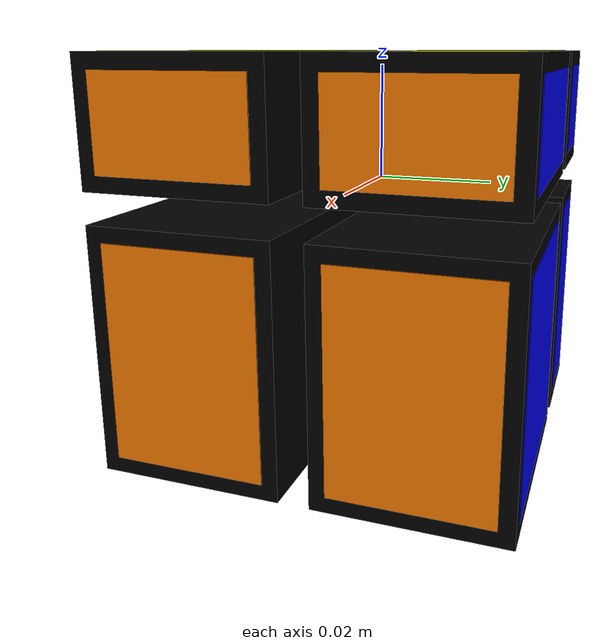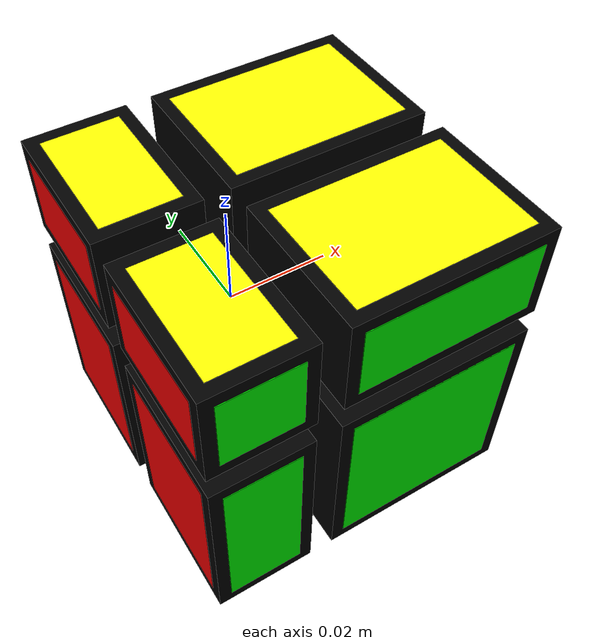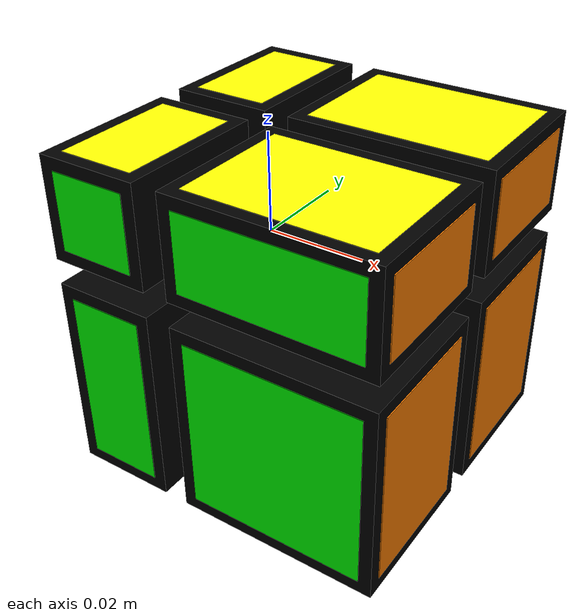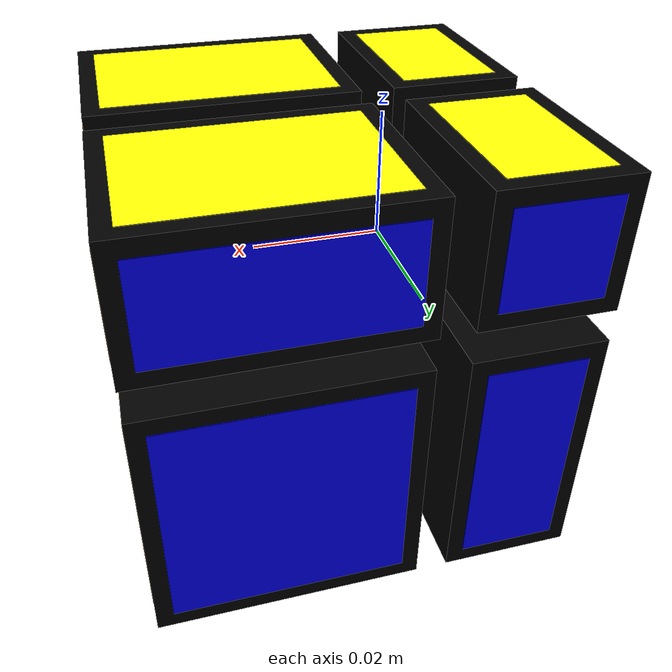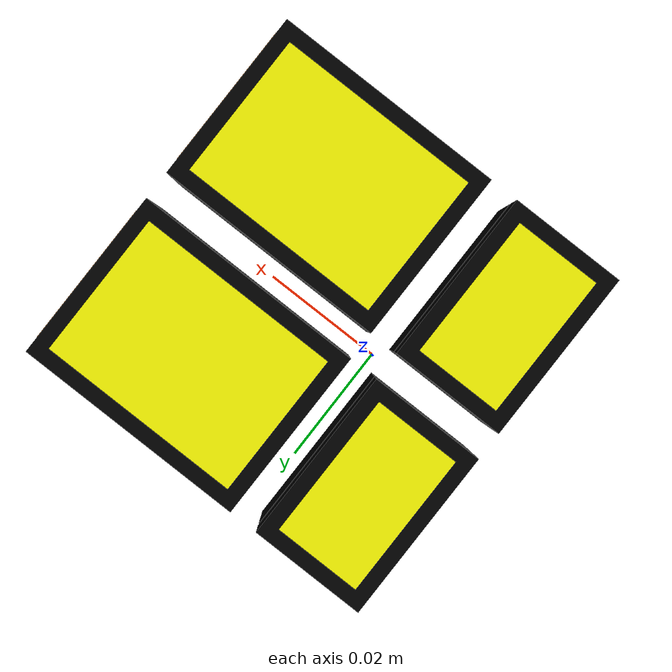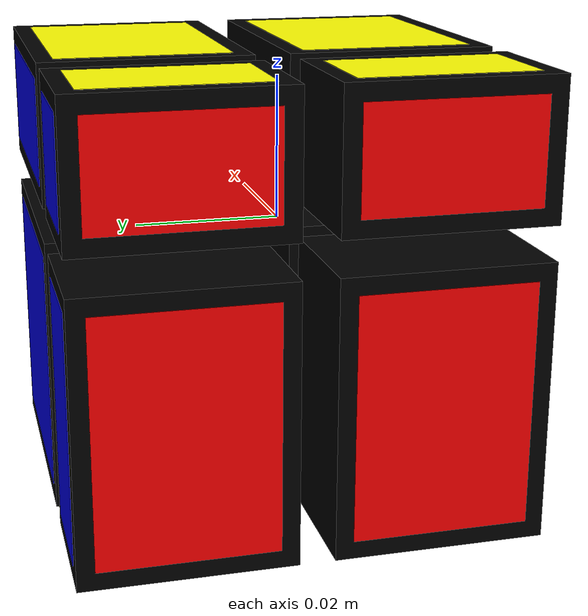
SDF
<?xml version="1.0" ?>
<sdf version="1.7">
	<model name="mirror_cube_2x2">
		<link name="center_mirror_big_space"/>
		<link name="cubie_0_0_0">
			<pose>-0.0125 -0.017499999999999998 -0.0225 0.0 0.0 0.0</pose>
			<inertial>
				<mass>0.009359999999999999</mass>
				<inertia>
					<ixx>1.9499999999999995e-06</ixx>
					<ixy>0.0</ixy>
					<ixz>0.0</ixz>
					<iyy>1.5599999999999999e-06</iyy>
					<iyz>0.0</iyz>
					<izz>1.0139999999999997e-06</izz>
				</inertia>
			</inertial>
			<collision name="collision">
				<geometry>
					<box>
						<size>0.02 0.03 0.04</size>
					</box>
				</geometry>
				<surface>
					<friction>
						<ode>
							<mu>0</mu>
							<mu2>0</mu2>
						</ode>
					</friction>
				</surface>
			</collision>
			<visual name="black">
				<geometry>
					<box>
						<size>0.02 0.03 0.04</size>
					</box>
				</geometry>
				<material>
					<diffuse>0 0 0 1</diffuse>
				</material>
			</visual>
			<visual name="red">
				<pose>-0.01 0.0 0.0 0.0 0.0 0.0</pose>
				<geometry>
					<box>
						<size>0.00015 0.025 0.035</size>
					</box>
				</geometry>
				<material>
					<diffuse>1 0 0 1</diffuse>
				</material>
			</visual>
			<visual name="green">
				<pose>0.0 -0.015 0.0 0.0 0.0 0.0</pose>
				<geometry>
					<box>
						<size>0.015 0.00025 0.035</size>
					</box>
				</geometry>
				<material>
					<diffuse>0 1 0 1</diffuse>
				</material>
			</visual>
			<visual name="white">
				<pose>0.0 0.0 -0.02 0.0 0.0 0.0</pose>
				<geometry>
					<box>
						<size>0.015 0.025 0.00035</size>
					</box>
				</geometry>
				<material>
					<diffuse>1 1 1 1</diffuse>
				</material>
			</visual>
		</link>
		<joint name="ball_0_0_0" type="ball">
			<pose>0.0125 0.017499999999999998 0.0225 -0.0 -0.0 -0.0</pose>
			<parent>center_mirror_big_space</parent>
			<child>cubie_0_0_0</child>
			<axis>
				<dynamics>
					<damping>0.1</damping>
				</dynamics>
				<limit>
					<effort>0</effort>
				</limit>
			</axis>
		</joint>
		<link name="cubie_0_0_1">
			<pose>-0.0125 -0.017499999999999998 0.012499999999999999 0.0 0.0 0.0</pose>
			<inertial>
				<mass>0.004679999999999998</mass>
				<inertia>
					<ixx>5.069999999999999e-07</ixx>
					<ixy>0.0</ixy>
					<ixz>0.0</ixz>
					<iyy>3.119999999999999e-07</iyy>
					<iyz>0.0</iyz>
					<izz>5.069999999999999e-07</izz>
				</inertia>
			</inertial>
			<collision name="collision">
				<geometry>
					<box>
						<size>0.02 0.03 0.019999999999999997</size>
					</box>
				</geometry>
				<surface>
					<friction>
						<ode>
							<mu>0</mu>
							<mu2>0</mu2>
						</ode>
					</friction>
				</surface>
			</collision>
			<visual name="black">
				<geometry>
					<box>
						<size>0.02 0.03 0.019999999999999997</size>
					</box>
				</geometry>
				<material>
					<diffuse>0 0 0 1</diffuse>
				</material>
			</visual>
			<visual name="red">
				<pose>-0.01 0.0 0.0 0.0 0.0 0.0</pose>
				<geometry>
					<box>
						<size>0.00015 0.025 0.015</size>
					</box>
				</geometry>
				<material>
					<diffuse>1 0 0 1</diffuse>
				</material>
			</visual>
			<visual name="green">
				<pose>0.0 -0.015 0.0 0.0 0.0 0.0</pose>
				<geometry>
					<box>
						<size>0.015 0.00025 0.015</size>
					</box>
				</geometry>
				<material>
					<diffuse>0 1 0 1</diffuse>
				</material>
			</visual>
			<visual name="yellow">
				<pose>0.0 0.0 0.009999999999999998 0.0 0.0 0.0</pose>
				<geometry>
					<box>
						<size>0.015 0.025 0.00015</size>
					</box>
				</geometry>
				<material>
					<diffuse>1 1 0 1</diffuse>
				</material>
			</visual>
		</link>
		<joint name="ball_0_0_1" type="ball">
			<pose>0.0125 0.017499999999999998 -0.012499999999999999 -0.0 -0.0 -0.0</pose>
			<parent>center_mirror_big_space</parent>
			<child>cubie_0_0_1</child>
			<axis>
				<dynamics>
					<damping>0.1</damping>
				</dynamics>
				<limit>
					<effort>0</effort>
				</limit>
			</axis>
		</joint>
		<link name="cubie_0_1_0">
			<pose>-0.0125 0.017499999999999998 -0.0225 0.0 0.0 0.0</pose>
			<inertial>
				<mass>0.009359999999999999</mass>
				<inertia>
					<ixx>1.9499999999999995e-06</ixx>
					<ixy>0.0</ixy>
					<ixz>0.0</ixz>
					<iyy>1.5599999999999999e-06</iyy>
					<iyz>0.0</iyz>
					<izz>1.0139999999999997e-06</izz>
				</inertia>
			</inertial>
			<collision name="collision">
				<geometry>
					<box>
						<size>0.02 0.03 0.04</size>
					</box>
				</geometry>
				<surface>
					<friction>
						<ode>
							<mu>0</mu>
							<mu2>0</mu2>
						</ode>
					</friction>
				</surface>
			</collision>
			<visual name="black">
				<geometry>
					<box>
						<size>0.02 0.03 0.04</size>
					</box>
				</geometry>
				<material>
					<diffuse>0 0 0 1</diffuse>
				</material>
			</visual>
			<visual name="red">
				<pose>-0.01 0.0 0.0 0.0 0.0 0.0</pose>
				<geometry>
					<box>
						<size>0.00015 0.025 0.035</size>
					</box>
				</geometry>
				<material>
					<diffuse>1 0 0 1</diffuse>
				</material>
			</visual>
			<visual name="blue">
				<pose>0.0 0.015 0.0 0.0 0.0 0.0</pose>
				<geometry>
					<box>
						<size>0.015 0.00025 0.035</size>
					</box>
				</geometry>
				<material>
					<diffuse>0 0 1 1</diffuse>
				</material>
			</visual>
			<visual name="white">
				<pose>0.0 0.0 -0.02 0.0 0.0 0.0</pose>
				<geometry>
					<box>
						<size>0.015 0.025 0.00035</size>
					</box>
				</geometry>
				<material>
					<diffuse>1 1 1 1</diffuse>
				</material>
			</visual>
		</link>
		<joint name="ball_0_1_0" type="ball">
			<pose>0.0125 -0.017499999999999998 0.0225 -0.0 -0.0 -0.0</pose>
			<parent>center_mirror_big_space</parent>
			<child>cubie_0_1_0</child>
			<axis>
				<dynamics>
					<damping>0.1</damping>
				</dynamics>
				<limit>
					<effort>0</effort>
				</limit>
			</axis>
		</joint>
		<link name="cubie_0_1_1">
			<pose>-0.0125 0.017499999999999998 0.012499999999999999 0.0 0.0 0.0</pose>
			<inertial>
				<mass>0.004679999999999998</mass>
				<inertia>
					<ixx>5.069999999999999e-07</ixx>
					<ixy>0.0</ixy>
					<ixz>0.0</ixz>
					<iyy>3.119999999999999e-07</iyy>
					<iyz>0.0</iyz>
					<izz>5.069999999999999e-07</izz>
				</inertia>
			</inertial>
			<collision name="collision">
				<geometry>
					<box>
						<size>0.02 0.03 0.019999999999999997</size>
					</box>
				</geometry>
				<surface>
					<friction>
						<ode>
							<mu>0</mu>
							<mu2>0</mu2>
						</ode>
					</friction>
				</surface>
			</collision>
			<visual name="black">
				<geometry>
					<box>
						<size>0.02 0.03 0.019999999999999997</size>
					</box>
				</geometry>
				<material>
					<diffuse>0 0 0 1</diffuse>
				</material>
			</visual>
			<visual name="red">
				<pose>-0.01 0.0 0.0 0.0 0.0 0.0</pose>
				<geometry>
					<box>
						<size>0.00015 0.025 0.015</size>
					</box>
				</geometry>
				<material>
					<diffuse>1 0 0 1</diffuse>
				</material>
			</visual>
			<visual name="blue">
				<pose>0.0 0.015 0.0 0.0 0.0 0.0</pose>
				<geometry>
					<box>
						<size>0.015 0.00025 0.015</size>
					</box>
				</geometry>
				<material>
					<diffuse>0 0 1 1</diffuse>
				</material>
			</visual>
			<visual name="yellow">
				<pose>0.0 0.0 0.009999999999999998 0.0 0.0 0.0</pose>
				<geometry>
					<box>
						<size>0.015 0.025 0.00015</size>
					</box>
				</geometry>
				<material>
					<diffuse>1 1 0 1</diffuse>
				</material>
			</visual>
		</link>
		<joint name="ball_0_1_1" type="ball">
			<pose>0.0125 -0.017499999999999998 -0.012499999999999999 -0.0 -0.0 -0.0</pose>
			<parent>center_mirror_big_space</parent>
			<child>cubie_0_1_1</child>
			<axis>
				<dynamics>
					<damping>0.1</damping>
				</dynamics>
				<limit>
					<effort>0</effort>
				</limit>
			</axis>
		</joint>
		<link name="cubie_1_0_0">
			<pose>0.022499999999999996 -0.017499999999999998 -0.0225 0.0 0.0 0.0</pose>
			<inertial>
				<mass>0.018719999999999994</mass>
				<inertia>
					<ixx>3.899999999999999e-06</ixx>
					<ixy>0.0</ixy>
					<ixz>0.0</ixz>
					<iyy>4.991999999999998e-06</iyy>
					<iyz>0.0</iyz>
					<izz>3.899999999999998e-06</izz>
				</inertia>
			</inertial>
			<collision name="collision">
				<geometry>
					<box>
						<size>0.039999999999999994 0.03 0.04</size>
					</box>
				</geometry>
				<surface>
					<friction>
						<ode>
							<mu>0</mu>
							<mu2>0</mu2>
						</ode>
					</friction>
				</surface>
			</collision>
			<visual name="black">
				<geometry>
					<box>
						<size>0.039999999999999994 0.03 0.04</size>
					</box>
				</geometry>
				<material>
					<diffuse>0 0 0 1</diffuse>
				</material>
			</visual>
			<visual name="orange">
				<pose>0.019999999999999997 0.0 0.0 0.0 0.0 0.0</pose>
				<geometry>
					<box>
						<size>0.00035 0.025 0.035</size>
					</box>
				</geometry>
				<material>
					<diffuse>1.0 0.5 0.0 1.0</diffuse>
				</material>
			</visual>
			<visual name="green">
				<pose>0.0 -0.015 0.0 0.0 0.0 0.0</pose>
				<geometry>
					<box>
						<size>0.035 0.00025 0.035</size>
					</box>
				</geometry>
				<material>
					<diffuse>0 1 0 1</diffuse>
				</material>
			</visual>
			<visual name="white">
				<pose>0.0 0.0 -0.02 0.0 0.0 0.0</pose>
				<geometry>
					<box>
						<size>0.035 0.025 0.00035</size>
					</box>
				</geometry>
				<material>
					<diffuse>1 1 1 1</diffuse>
				</material>
			</visual>
		</link>
		<joint name="ball_1_0_0" type="ball">
			<pose>-0.022499999999999996 0.017499999999999998 0.0225 -0.0 -0.0 -0.0</pose>
			<parent>center_mirror_big_space</parent>
			<child>cubie_1_0_0</child>
			<axis>
				<dynamics>
					<damping>0.1</damping>
				</dynamics>
				<limit>
					<effort>0</effort>
				</limit>
			</axis>
		</joint>
		<link name="cubie_1_0_1">
			<pose>0.022499999999999996 -0.017499999999999998 0.012499999999999999 0.0 0.0 0.0</pose>
			<inertial>
				<mass>0.009359999999999997</mass>
				<inertia>
					<ixx>1.0139999999999997e-06</ixx>
					<ixy>0.0</ixy>
					<ixz>0.0</ixz>
					<iyy>1.5599999999999988e-06</iyy>
					<iyz>0.0</iyz>
					<izz>1.949999999999999e-06</izz>
				</inertia>
			</inertial>
			<collision name="collision">
				<geometry>
					<box>
						<size>0.039999999999999994 0.03 0.019999999999999997</size>
					</box>
				</geometry>
				<surface>
					<friction>
						<ode>
							<mu>0</mu>
							<mu2>0</mu2>
						</ode>
					</friction>
				</surface>
			</collision>
			<visual name="black">
				<geometry>
					<box>
						<size>0.039999999999999994 0.03 0.019999999999999997</size>
					</box>
				</geometry>
				<material>
					<diffuse>0 0 0 1</diffuse>
				</material>
			</visual>
			<visual name="orange">
				<pose>0.019999999999999997 0.0 0.0 0.0 0.0 0.0</pose>
				<geometry>
					<box>
						<size>0.00035 0.025 0.015</size>
					</box>
				</geometry>
				<material>
					<diffuse>1.0 0.5 0.0 1.0</diffuse>
				</material>
			</visual>
			<visual name="green">
				<pose>0.0 -0.015 0.0 0.0 0.0 0.0</pose>
				<geometry>
					<box>
						<size>0.035 0.00025 0.015</size>
					</box>
				</geometry>
				<material>
					<diffuse>0 1 0 1</diffuse>
				</material>
			</visual>
			<visual name="yellow">
				<pose>0.0 0.0 0.009999999999999998 0.0 0.0 0.0</pose>
				<geometry>
					<box>
						<size>0.035 0.025 0.00015</size>
					</box>
				</geometry>
				<material>
					<diffuse>1 1 0 1</diffuse>
				</material>
			</visual>
		</link>
		<joint name="ball_1_0_1" type="ball">
			<pose>-0.022499999999999996 0.017499999999999998 -0.012499999999999999 -0.0 -0.0 -0.0</pose>
			<parent>center_mirror_big_space</parent>
			<child>cubie_1_0_1</child>
			<axis>
				<dynamics>
					<damping>0.1</damping>
				</dynamics>
				<limit>
					<effort>0</effort>
				</limit>
			</axis>
		</joint>
		<link name="cubie_1_1_0">
			<pose>0.022499999999999996 0.017499999999999998 -0.0225 0.0 0.0 0.0</pose>
			<inertial>
				<mass>0.018719999999999994</mass>
				<inertia>
					<ixx>3.899999999999999e-06</ixx>
					<ixy>0.0</ixy>
					<ixz>0.0</ixz>
					<iyy>4.991999999999998e-06</iyy>
					<iyz>0.0</iyz>
					<izz>3.899999999999998e-06</izz>
				</inertia>
			</inertial>
			<collision name="collision">
				<geometry>
					<box>
						<size>0.039999999999999994 0.03 0.04</size>
					</box>
				</geometry>
				<surface>
					<friction>
						<ode>
							<mu>0</mu>
							<mu2>0</mu2>
						</ode>
					</friction>
				</surface>
			</collision>
			<visual name="black">
				<geometry>
					<box>
						<size>0.039999999999999994 0.03 0.04</size>
					</box>
				</geometry>
				<material>
					<diffuse>0 0 0 1</diffuse>
				</material>
			</visual>
			<visual name="orange">
				<pose>0.019999999999999997 0.0 0.0 0.0 0.0 0.0</pose>
				<geometry>
					<box>
						<size>0.00035 0.025 0.035</size>
					</box>
				</geometry>
				<material>
					<diffuse>1.0 0.5 0.0 1.0</diffuse>
				</material>
			</visual>
			<visual name="blue">
				<pose>0.0 0.015 0.0 0.0 0.0 0.0</pose>
				<geometry>
					<box>
						<size>0.035 0.00025 0.035</size>
					</box>
				</geometry>
				<material>
					<diffuse>0 0 1 1</diffuse>
				</material>
			</visual>
			<visual name="white">
				<pose>0.0 0.0 -0.02 0.0 0.0 0.0</pose>
				<geometry>
					<box>
						<size>0.035 0.025 0.00035</size>
					</box>
				</geometry>
				<material>
					<diffuse>1 1 1 1</diffuse>
				</material>
			</visual>
		</link>
		<joint name="ball_1_1_0" type="ball">
			<pose>-0.022499999999999996 -0.017499999999999998 0.0225 -0.0 -0.0 -0.0</pose>
			<parent>center_mirror_big_space</parent>
			<child>cubie_1_1_0</child>
			<axis>
				<dynamics>
					<damping>0.1</damping>
				</dynamics>
				<limit>
					<effort>0</effort>
				</limit>
			</axis>
		</joint>
		<link name="cubie_1_1_1">
			<pose>0.022499999999999996 0.017499999999999998 0.012499999999999999 0.0 0.0 0.0</pose>
			<inertial>
				<mass>0.009359999999999997</mass>
				<inertia>
					<ixx>1.0139999999999997e-06</ixx>
					<ixy>0.0</ixy>
					<ixz>0.0</ixz>
					<iyy>1.5599999999999988e-06</iyy>
					<iyz>0.0</iyz>
					<izz>1.949999999999999e-06</izz>
				</inertia>
			</inertial>
			<collision name="collision">
				<geometry>
					<box>
						<size>0.039999999999999994 0.03 0.019999999999999997</size>
					</box>
				</geometry>
				<surface>
					<friction>
						<ode>
							<mu>0</mu>
							<mu2>0</mu2>
						</ode>
					</friction>
				</surface>
			</collision>
			<visual name="black">
				<geometry>
					<box>
						<size>0.039999999999999994 0.03 0.019999999999999997</size>
					</box>
				</geometry>
				<material>
					<diffuse>0 0 0 1</diffuse>
				</material>
			</visual>
			<visual name="orange">
				<pose>0.019999999999999997 0.0 0.0 0.0 0.0 0.0</pose>
				<geometry>
					<box>
						<size>0.00035 0.025 0.015</size>
					</box>
				</geometry>
				<material>
					<diffuse>1.0 0.5 0.0 1.0</diffuse>
				</material>
			</visual>
			<visual name="blue">
				<pose>0.0 0.015 0.0 0.0 0.0 0.0</pose>
				<geometry>
					<box>
						<size>0.035 0.00025 0.015</size>
					</box>
				</geometry>
				<material>
					<diffuse>0 0 1 1</diffuse>
				</material>
			</visual>
			<visual name="yellow">
				<pose>0.0 0.0 0.009999999999999998 0.0 0.0 0.0</pose>
				<geometry>
					<box>
						<size>0.035 0.025 0.00015</size>
					</box>
				</geometry>
				<material>
					<diffuse>1 1 0 1</diffuse>
				</material>
			</visual>
		</link>
		<joint name="ball_1_1_1" type="ball">
			<pose>-0.022499999999999996 -0.017499999999999998 -0.012499999999999999 -0.0 -0.0 -0.0</pose>
			<parent>center_mirror_big_space</parent>
			<child>cubie_1_1_1</child>
			<axis>
				<dynamics>
					<damping>0.1</damping>
				</dynamics>
				<limit>
					<effort>0</effort>
				</limit>
			</axis>
		</joint>
	</model>
</sdf>
